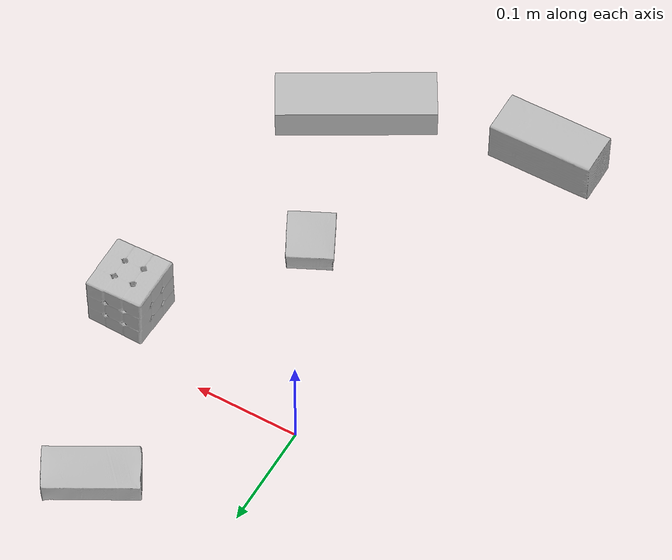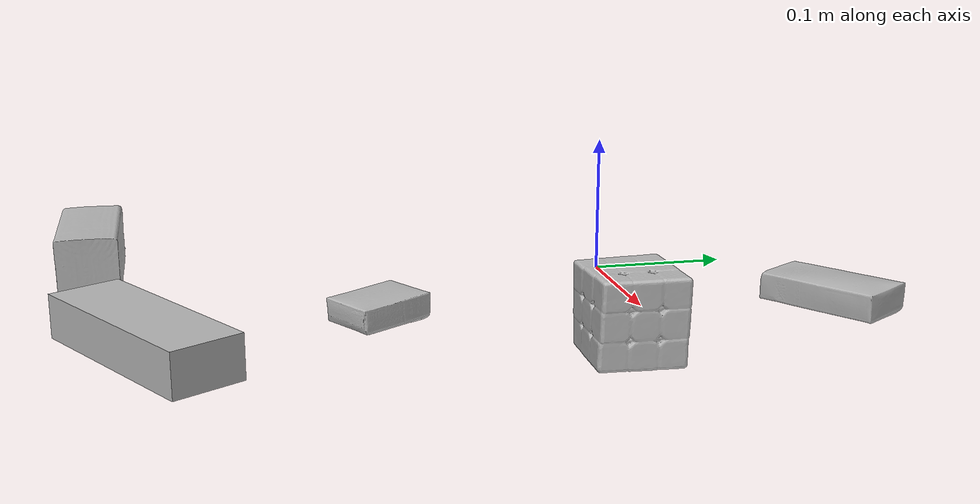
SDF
<sdf version="1.4">
  <world name="default">
    <light name="light1" type="point">
      <pose>0 0 1 0 0 0</pose>
      <diffuse>3 3 3 1</diffuse>
      <specular>3 3 3 1</specular>
    </light>
    <light name="light2" type="point">
      <pose>0 0.5 2 0 0 0</pose>
      <diffuse>1 1 1 1</diffuse>
      <specular>1 1 1 1</specular>
    </light>
    <light name="light3" type="point">
      <pose>0 0.5 2 0 0 0</pose>
      <diffuse>3 3 3 1</diffuse>
      <specular>3 3 3 1</specular>
    </light>
    <scene>
      <ambient>0.7 0.7 0.7</ambient>
    </scene>
    <model name="box1">
      <link name="link_box1">
        <collision name="default">
          <geometry>
            <mesh>
              <uri>model://wood_block/collision_meshes/collision.obj</uri>
              <scale>0.5 0.5 0.5</scale>
            </mesh>
          </geometry>
          <surface>
            <friction>
              <ode>
                <mu>0.5</mu>
                <mu2>0.5</mu2>
              </ode>
            </friction>
          <contact>
        <ode>
            <max_vel>0</max_vel>
            <min_depth>0.0001</min_depth>
            <kp>1e8</kp>
        </ode>
    </contact></surface>
        </collision>
        <visual name="default">
          <geometry>
            <mesh>
              <uri>model://wood_block/visual_meshes/visual.dae</uri>
              <scale>0.5 0.5 0.5</scale>
            </mesh>
          </geometry>
        </visual>
        <inertial>
          <mass>0.21249504387378693</mass>
          <pose>-2.906657528001233e-06 -0.00028540470520965755 0.00013204290007706732 -0.05220867383734612 -0.005192696375656893 -0.006861378651330705</pose>
          <inertia>
            <ixx>7.108762e-05</ixx>
            <iyy>0.00022456584</iyy>
            <izz>0.00022372584</izz>
            <ixy>0</ixy>
            <ixz>0</ixz>
            <iyz>0</iyz>
          </inertia>
        </inertial>
      </link>
      <pose>-0.048213474452495575 -0.37794411182403564 0.02262926660478115 -0.005208443365350002 0.005718559276775331 -3.1362655995705033</pose>
    </model>
    <model name="box2">
      <link name="link_box2">
        <collision name="default">
          <geometry>
            <mesh>
              <uri>model://sugar_box/collision_meshes/collision.obj</uri>
              <scale>0.5 0.5 0.5</scale>
            </mesh>
          </geometry>
          <surface>
            <friction>
              <ode>
                <mu>0.5</mu>
                <mu2>0.5</mu2>
              </ode>
            </friction>
          <contact>
        <ode>
            <max_vel>0</max_vel>
            <min_depth>0.0001</min_depth>
            <kp>1e8</kp>
        </ode>
    </contact></surface>
        </collision>
        <visual name="default">
          <geometry>
            <mesh>
              <uri>model://sugar_box/visual_meshes/visual.dae</uri>
              <scale>0.5 0.5 0.5</scale>
            </mesh>
          </geometry>
        </visual>
        <inertial>
          <mass>0.11089310050010681</mass>
          <pose>0.0005171863595023751 1.924554817378521e-05 -0.00018182402709499002 -0.0004046262999979174 0.001050663638672674 0.002615379254561693</pose>
          <inertia>
            <ixx>2.3098954e-05</ixx>
            <iyy>7.4660566e-05</iyy>
            <izz>8.9377616e-05</izz>
            <ixy>0</ixy>
            <ixz>0</ixz>
            <iyz>0</iyz>
          </inertia>
        </inertial>
      </link>
      <pose>0.12872709333896637 0.12943588197231293 0.011399301700294018 0.0007756174061032213 -0.023432721236575527 0.5358139588057487</pose>
    </model>
    <model name="box3">
      <link name="link_box3">
        <collision name="default">
          <geometry>
            <mesh>
              <uri>model://jenga/collision_meshes/collision.obj</uri>
              <scale>1.0 1.0 1.0</scale>
            </mesh>
          </geometry>
          <surface>
            <friction>
              <ode>
                <mu>0.5</mu>
                <mu2>0.5</mu2>
              </ode>
            </friction>
          <contact>
        <ode>
            <max_vel>0</max_vel>
            <min_depth>0.0001</min_depth>
            <kp>1e8</kp>
        </ode>
    </contact></surface>
        </collision>
        <visual name="default">
          <geometry>
            <mesh>
              <uri>model://jenga/visual_meshes/visual.dae</uri>
              <scale>1.0 1.0 1.0</scale>
            </mesh>
          </geometry>
        </visual>
        <inertial>
          <mass>0.163609579205513</mass>
          <pose>-2.502855807051674e-07 -0.0001025000965455547 -4.0923401684267446e-05 0.0 -7.34215461761844e-07 0.0</pose>
          <inertia>
            <ixx>4.527474e-05</ixx>
            <iyy>0.00030678045</iyy>
            <izz>0.0003275142</izz>
            <ixy>0</ixy>
            <ixz>0</ixz>
            <iyz>0</iyz>
          </inertia>
        </inertial>
      </link>
      <pose>0.1332988291978836 -0.33830106258392334 0.015000000596046448 2.107213664555321e-08 1.249461541161037e-10 -2.6116957653622612</pose>
    </model>
    <model name="box4">
      <link name="link_box4">
        <collision name="default">
          <geometry>
            <mesh>
              <uri>model://rubiks_cube/collision_meshes/collision.obj</uri>
              <scale>1.0 1.0 1.0</scale>
            </mesh>
          </geometry>
          <surface>
            <friction>
              <ode>
                <mu>0.5</mu>
                <mu2>0.5</mu2>
              </ode>
            </friction>
          <contact>
        <ode>
            <max_vel>0</max_vel>
            <min_depth>0.0001</min_depth>
            <kp>1e8</kp>
        </ode>
    </contact></surface>
        </collision>
        <visual name="default">
          <geometry>
            <mesh>
              <uri>model://rubiks_cube/visual_meshes/visual.dae</uri>
              <scale>1.0 1.0 1.0</scale>
            </mesh>
          </geometry>
        </visual>
        <inertial>
          <mass>0.25540637969970703</mass>
          <pose>2.6721041649580002e-05 5.2569666877388954e-05 -7.264316082000732e-06 -0.054671713185757496 -0.09814043055608018 -0.034455401135126476</pose>
          <inertia>
            <ixx>0.00014112917</ixx>
            <iyy>0.000140471</iyy>
            <izz>0.00014229867</izz>
            <ixy>0</ixy>
            <ixz>0</ixz>
            <iyz>0</iyz>
          </inertia>
        </inertial>
      </link>
      <pose>0.19500936567783356 -0.0426274873316288 0.02867901511490345 -5.648920307248069e-08 3.018918169257617e-08 -3.12792064208601</pose>
    </model>
    <model name="box5">
      <link name="link_box5">
        <collision name="default">
          <geometry>
            <mesh>
              <uri>model://pudding_box/collision_meshes/collision.obj</uri>
              <scale>0.5 0.5 0.5</scale>
            </mesh>
          </geometry>
          <surface>
            <friction>
              <ode>
                <mu>0.5</mu>
                <mu2>0.5</mu2>
              </ode>
            </friction>
          <contact>
        <ode>
            <max_vel>0</max_vel>
            <min_depth>0.0001</min_depth>
            <kp>1e8</kp>
        </ode>
    </contact></surface>
        </collision>
        <visual name="default">
          <geometry>
            <mesh>
              <uri>model://pudding_box/visual_meshes/visual.dae</uri>
              <scale>0.5 0.5 0.5</scale>
            </mesh>
          </geometry>
        </visual>
        <inertial>
          <mass>0.04848850890994072</mass>
          <pose>0.00024474109522998333 0.000403394311433658 -0.0002594413817860186 0.0052131017882315455 -0.0066037973363940366 0.020079830752013892</pose>
          <inertia>
            <ixx>1.370344e-05</ixx>
            <iyy>9.219772e-06</iyy>
            <izz>2.023671e-05</izz>
            <ixy>0</ixy>
            <ixz>0</ixz>
            <iyz>0</iyz>
          </inertia>
        </inertial>
      </link>
      <pose>0.09202872216701508 -0.18434733152389526 0.009862903505563736 0.022348411486235755 -0.011391844593272015 0.4827916314395893</pose>
    </model>
  <physics type="ode">
      <max_contacts>50</max_contacts>
      <ode>
        <solver>
          <type>quick</type>
          <iters>75</iters>
        </solver>
        <constraints>
          <contact_max_correcting_vel>0</contact_max_correcting_vel>
          <contact_surface_layer>0</contact_surface_layer>
        </constraints>
      </ode>
    </physics></world>
</sdf>
